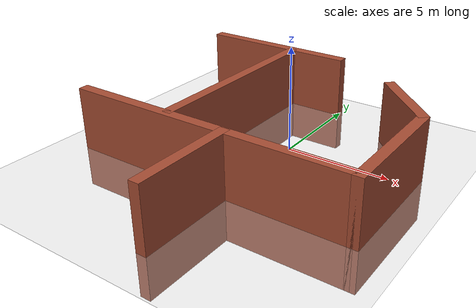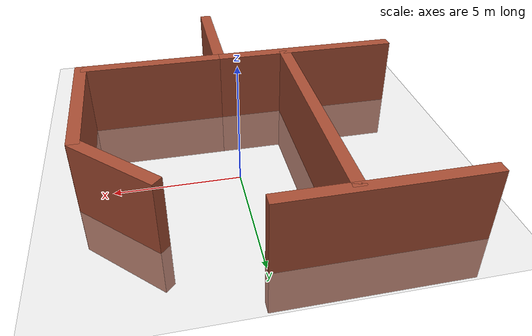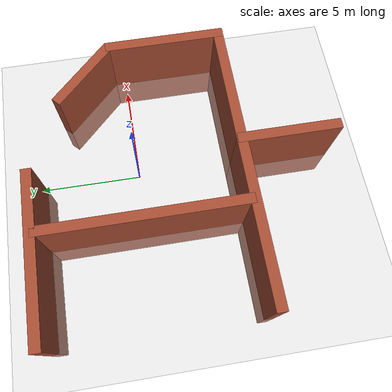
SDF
<?xml version="1.0"?>
<sdf version="1.5">
<world name="default">
<!-- Sun and ground plane -->
<include >
<uri>
model://sun
</uri>
</include>
<include>
<uri>
model://ground_plane
</uri>
</include>

<!-- Initial camera position -->
<gui fullscreen='0'>
<camera name='world_camera'>
  <pose>-4 -4 4 0.000000 1 -4</pose>
  <view_controller>orbit</view_controller>
</camera>
</gui>

<!-- Walls -->
<model name="v1">
    <pose>-4 -5 0.5 0 0 0</pose>
    <static>true</static>
    <link name="link">
      <inertial>
        <mass>500.0</mass>
        <inertia> <!-- inertias are tricky to compute -->
          <!-- http://gazebosim.org/tutorials?tut=inertia&cat=build_robot -->
          <ixx>0.51875</ixx>       <!-- for a box: ixx = 0.083 * mass * (y*y + z*z) -->
          <ixy>0.0</ixy>         <!-- for a box: ixy = 0 -->
          <ixz>0.0</ixz>         <!-- for a box: ixz = 0 -->
          <iyy>0.083</iyy>       <!-- for a box: iyy = 0.083 * mass * (x*x + z*z) -->
          <iyz>0.0</iyz>         <!-- for a box: iyz = 0 -->
          <izz>0.083</izz>       <!-- for a box: izz = 0.083 * mass * (x*x + y*y) -->
        </inertia>
      </inertial>
      <collision name="collision">
        <geometry>
          <box>
            <size>8 0.5 5</size>
          </box>
        </geometry>
      </collision>
      <visual name="visual">
        <geometry>
          <box>
            <size>8 0.5 5</size>
          </box>
        </geometry>
        <material>
          <!-- Texture -->
          <script>
            <uri>file://media/material/scripts/gazebo.material</uri>
            <name>Gazebo/Bricks</name>
          </script>
        </material>
      </visual>
    </link>
</model>

<model name="v2">
    <pose>-4 5 0.5 0 0 0</pose>
    <static>true</static>
    <link name="link">
      <inertial>
        <mass>500.0</mass>
        <inertia>
          <ixx>0.51875</ixx>
          <ixy>0.0</ixy>
          <ixz>0.0</ixz>
          <iyy>0.083</iyy>
          <iyz>0.0</iyz>
          <izz>0.083</izz>
        </inertia>
      </inertial>
      <collision name="collision">
        <geometry>
          <box>
            <size>8 0.5 5</size>
          </box>
        </geometry>
      </collision>
      <visual name="visual">
        <geometry>
          <box>
            <size>8 0.5 5</size>
          </box>
        </geometry>
        <material>
          <script>
            <uri>file://media/material/scripts/gazebo.material</uri>
            <name>Gazebo/Bricks</name>
          </script>
        </material>
      </visual>
    </link>
</model>

<model name="h1">
    <pose>0 -7.3 0.5 0 0 1.5708</pose>
    <static>true</static>
    <link name="link">
      <inertial>
        <mass>500.0</mass>
        <inertia>
          <ixx>0.51875</ixx>
          <ixy>0.0</ixy>
          <ixz>0.0</ixz>
          <iyy>0.083</iyy>
          <iyz>0.0</iyz>
          <izz>0.083</izz>
        </inertia>
      </inertial>
      <collision name="collision">
        <geometry>
          <box>
            <size>5 0.5 5</size>
          </box>
        </geometry>
      </collision>
      <visual name="visual">
        <geometry>
          <box>
            <size>5 0.5 5</size>
          </box>
        </geometry>
        <material>
          <script>
            <uri>file://media/material/scripts/gazebo.material</uri>
            <name>Gazebo/Bricks</name>
          </script>
        </material>
      </visual>
    </link>
</model>

<model name="v3">
    <pose>3 -5 0.5 0 0 0</pose>
    <static>true</static>
    <link name="link">
      <inertial>
        <mass>500.0</mass>
        <inertia>
          <ixx>0.51875</ixx>
          <ixy>0.0</ixy>
          <ixz>0.0</ixz>
          <iyy>0.083</iyy>
          <iyz>0.0</iyz>
          <izz>0.083</izz>
        </inertia>
      </inertial>
      <collision name="collision">
        <geometry>
          <box>
            <size>6 0.5 5</size>
          </box>
        </geometry>
      </collision>
      <visual name="visual">
        <geometry>
          <box>
            <size>6 0.5 5</size>
          </box>
        </geometry>
        <material>
          <script>
            <uri>file://media/material/scripts/gazebo.material</uri>
            <name>Gazebo/Bricks</name>
          </script>
        </material>
      </visual>
    </link>
</model>

<model name="h2">
    <pose>-3 0 0.5 0 0 1.5708</pose>
    <static>true</static>
    <link name="link">
      <inertial>
        <mass>500.0</mass>
        <inertia>
          <ixx>0.51875</ixx>
          <ixy>0.0</ixy>
          <ixz>0.0</ixz>
          <iyy>0.083</iyy>
          <iyz>0.0</iyz>
          <izz>0.083</izz>
        </inertia>
      </inertial>
      <collision name="collision">
        <geometry>
          <box>
            <size>10 0.5 5</size>
          </box>
        </geometry>
      </collision>
      <visual name="visual">
        <geometry>
          <box>
            <size>10 0.5 5</size>
          </box>
        </geometry>
        <material>
          <script>
            <uri>file://media/material/scripts/gazebo.material</uri>
            <name>Gazebo/Bricks</name>
          </script>
        </material>
      </visual>
    </link>
</model>

<model name="h3">
    <pose>6 -2.25 0.5 0 0 1.5708</pose>
    <static>true</static>
    <link name="link">
      <inertial>
        <mass>500.0</mass>
        <inertia>
          <ixx>0.51875</ixx>
          <ixy>0.0</ixy>
          <ixz>0.0</ixz>
          <iyy>0.083</iyy>
          <iyz>0.0</iyz>
          <izz>0.083</izz>
        </inertia>
      </inertial>
      <collision name="collision">
        <geometry>
          <box>
            <size>6 0.5 5</size>
          </box>
        </geometry>
      </collision>
      <visual name="visual">
        <geometry>
          <box>
            <size>6 0.5 5</size>
          </box>
        </geometry>
        <material>
          <script>
            <uri>file://media/material/scripts/gazebo.material</uri>
            <name>Gazebo/Bricks</name>
          </script>
        </material>
      </visual>
    </link>
</model>

<model name="angle_45">
    <pose>4.65 2 0.5 0 0 2.3562</pose>
    <static>true</static>
    <link name="link">
      <inertial>
        <mass>500.0</mass>
        <inertia>
          <ixx>0.51875</ixx>
          <ixy>0.0</ixy>
          <ixz>0.0</ixz>
          <iyy>0.083</iyy>
          <iyz>0.0</iyz>
          <izz>0.083</izz>
        </inertia>
      </inertial>
      <collision name="collision">
        <geometry>
          <box>
            <size>4 0.5 5</size>
          </box>
        </geometry>
      </collision>
      <visual name="visual">
        <geometry>
          <box>
            <size>4 0.5 5</size>
          </box>
        </geometry>
        <material>
          <script>
            <uri>file://media/material/scripts/gazebo.material</uri>
            <name>Gazebo/Bricks</name>
          </script>
        </material>
      </visual>
    </link>
</model>

</world>
</sdf>
